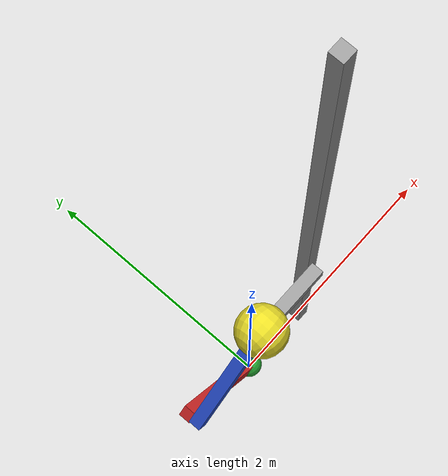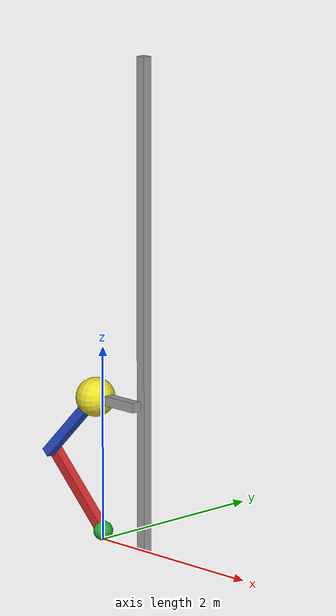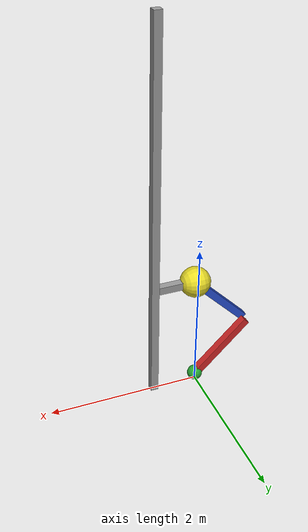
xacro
<?xml version="1.0"?>

<robot name="my_robot" xmlns:xacro="http://ros.org/wiki/xacro">

  <xacro:property name="pi" value="3.1415926535897931" />

  <link name="world"/>

  <joint name="base_joint" type="fixed">
    <parent link="world"/>
    <child link="base_link"/>
  </joint>

  <link name="base_link">
    <inertial>
      <mass value="1"/>
      <origin xyz="0.6 0 2.5" rpy="0 0 0"/>
      <inertia ixx="1.0" ixy="0.0" ixz="0.0" iyy="1.0" iyz="0.0" izz="1.0"/>
    </inertial>
    <visual>
      <origin xyz="0.6 0 2.5" rpy="0 0 0"/>
      <geometry>
        <box size="0.1 0.1 5.0"/>
      </geometry>
    </visual>
    <collision>
      <origin xyz="0.6 0 2.5" rpy="0 0 0"/>
      <geometry>
        <box size="0.1 0.1 5.0"/>
      </geometry>
    </collision>
  </link>
  <gazebo reference="base_link">
    <selfCollide>true</selfCollide>
    <mu1>0.6</mu1>
    <mu2>0.6</mu2>
    <material>Gazebo/Gray</material>
  </gazebo>

  <joint name="guide1_joint" type="prismatic">
    <parent link="base_link"/>
    <child link="guide1_link"/>
    <limit upper="3.0" lower="-1.0" effort="1000" velocity="100"/>
    <origin xyz="0.6 -0.1 1.5" rpy="0 ${-1*pi/2} 0"/>
    <dynamics damping="0.1"/>
  </joint>

  <link name="guide1_link">
    <inertial>
      <mass value="0.001"/>
      <origin xyz="0 0 0.25" rpy="0 ${pi/2} 0"/>
      <inertia ixx="1.0" ixy="0.0" ixz="0.0" iyy="1.0" iyz="0.0" izz="1.0"/>
    </inertial>
    <visual>
      <origin xyz="0 0 0.25" rpy="0 ${pi/2} 0"/>
      <geometry>
        <box size="0.5 0.1 0.1"/>
      </geometry>
    </visual>
    <collision>
      <origin xyz="0 0 0.25" rpy="0 ${pi/2} 0"/>
      <geometry>
        <box size="0.5 0.1 0.1"/>
      </geometry>
    </collision>
  </link>
  <gazebo reference="guide1_link">
    <selfCollide>true</selfCollide>
    <mu1>0.6</mu1>
    <mu2>0.6</mu2>
    <material>Gazebo/Gray</material>
  </gazebo>

  <joint name="arm3_joint" type="fixed">
    <parent link="guide1_link"/>
    <child link="arm3_link"/>
  </joint>

  <link name="arm3_link">
    <inertial>
      <mass value="3"/>
      <origin xyz="0 0 0.6" rpy="0 0 0"/>
      <inertia ixx="1.0" ixy="0.0" ixz="0.0" iyy="1.0" iyz="0.0" izz="1.0"/>
    </inertial>
    <visual>
      <origin xyz="0 0 0.6" rpy="0 0 0"/>
      <geometry>
        <sphere radius="0.2"/>
      </geometry>
    </visual>
    <collision>
      <origin xyz="0 0 0.6" rpy="0 0 0"/>
      <geometry>
        <sphere radius="0.2"/>
      </geometry>
    </collision>
  </link>
  <gazebo reference="arm3_link">
    <selfCollide>true</selfCollide>
    <mu1>0.6</mu1>
    <mu2>0.6</mu2>
    <material>Gazebo/Yellow</material>
  </gazebo>

  <joint name="arm2_joint" type="continuous">
    <parent link="arm3_link"/>
    <child link="arm2_link"/>
    <axis xyz="0 1 0"/>
    <origin xyz="0 0 0.6" rpy="0 0 0"/>
    <dynamics damping="0.1"/>
  </joint>

  <link name="arm2_link">
    <inertial>
      <mass value="0.5"/>
      <origin xyz="-0.3536 0 0.3536" rpy="0 0.7854 0"/>
      <inertia ixx="1.0" ixy="0.0" ixz="0.0" iyy="1.0" iyz="0.0" izz="1.0"/>
    </inertial>
    <visual>
      <origin xyz="-0.3536 0 0.3536" rpy="0 0.7854 0"/>
      <geometry>
        <box size="1.0 0.1 0.1"/>
      </geometry>
    </visual>
    <collision>
      <origin xyz="-0.3536 0 0.3536" rpy="0 0.7854 0"/>
      <geometry>
        <box size="1.0 0.1 0.1"/>
      </geometry>
    </collision>
  </link>
  <gazebo reference="arm2_link">
    <selfCollide>true</selfCollide>
    <mu1>0.6</mu1>
    <mu2>0.6</mu2>
    <material>Gazebo/Blue</material>
  </gazebo>

  <joint name="arm1_joint" type="revolute">
    <parent link="arm2_link"/>
    <child link="arm1_link"/>
    <limit upper="1.5" lower="-0.5" effort="1000" velocity="10"/>
    <axis xyz="0 1 0"/>
    <origin xyz="-0.7071 0.1 0.7071" rpy="0 0 0"/>
    <dynamics damping="0.1"/>
  </joint>
  <transmission name="arm1_trans">
    <type>transmission_interface/SimpleTransmission</type>
    <joint name="arm1_joint">
      <hardwareInterface>hardware_interface/EffortJointInterface</hardwareInterface>
    </joint>
    <actuator name="arm1_motor">
       <hardwareInterface>hardware_interface/EffortJointInterface</hardwareInterface>
       <mechanismReduction>1</mechanismReduction>
    </actuator>
  </transmission>

  <link name="arm1_link">
    <inertial>
      <origin xyz="-0.3536 0 -0.3536" rpy="0 0.7854 0"/>
      <mass value="0.5"/>
      <inertia ixx="1.0" ixy="0.0" ixz="0.0" iyy="1.0" iyz="0.0" izz="1.0"/>
    </inertial>
    <visual>
      <origin xyz="-0.3536 0 -0.3536" rpy="0 0.7854 0"/>
      <geometry>
        <box size="0.1 0.1 1.0"/>
      </geometry>
    </visual>
    <collision>
      <origin xyz="-0.3536 0 -0.3536" rpy="0 0.7854 0"/>
      <geometry>
        <box size="0.1 0.1 1.0"/>
      </geometry>
    </collision>
  </link>
  <gazebo reference="arm1_link">
    <selfCollide>true</selfCollide>
    <mu1>0.6</mu1>
    <mu2>0.6</mu2>
    <material>Gazebo/Red</material>
  </gazebo>

  <joint name="arm0_joint" type="fixed">
    <parent link="arm1_link"/>
    <child link="arm0_link"/>
  </joint>

  <link name="arm0_link">
    <inertial>
      <mass value="0.001"/>
      <origin xyz="-0.7071 0 -0.7071" rpy="0 0 0"/>
      <inertia ixx="1.0" ixy="0.0" ixz="0.0" iyy="1.0" iyz="0.0" izz="1.0"/>
    </inertial>
    <visual>
      <origin xyz="-0.7071 0 -0.7071" rpy="0 0 0"/>
      <geometry>
        <sphere radius="0.1"/>
      </geometry>
    </visual>
    <collision>
      <origin xyz="-0.7071 0 -0.7071" rpy="0 0 0"/>
      <geometry>
        <sphere radius="0.1"/>
      </geometry>
    </collision>
  </link>
  <gazebo reference="arm0_link">
    <selfCollide>true</selfCollide>
    <mu1>0.6</mu1>
    <mu2>0.6</mu2>
    <material>Gazebo/Green</material>
  </gazebo>

  <gazebo>
    <plugin name="gazebo_ros_control" filename="libgazebo_ros_control.so">
      <robotNamespace>/my_robot</robotNamespace>
    </plugin>
  </gazebo>
</robot>
